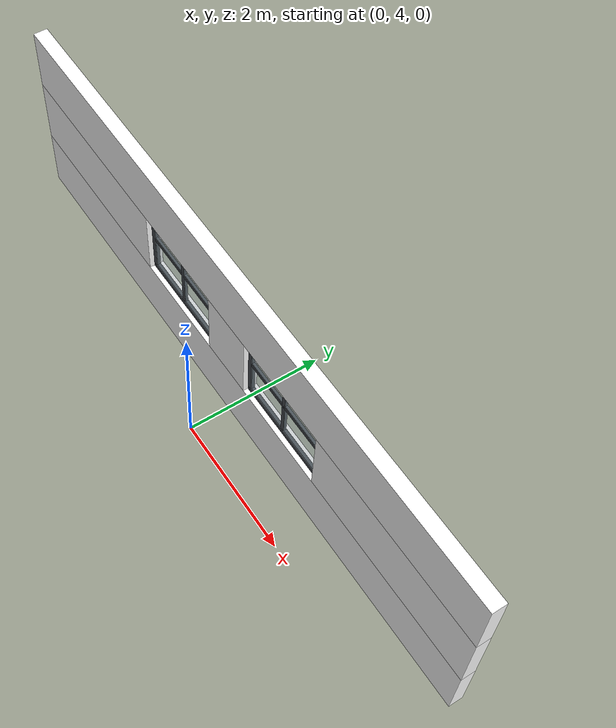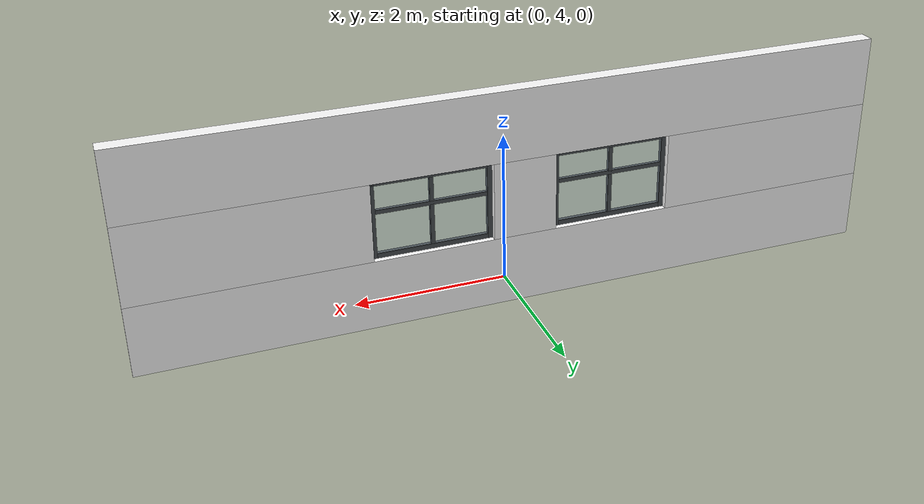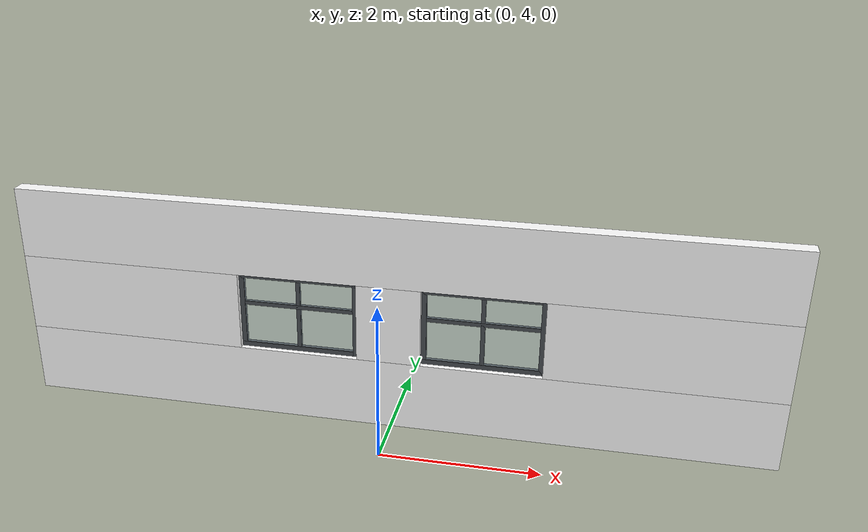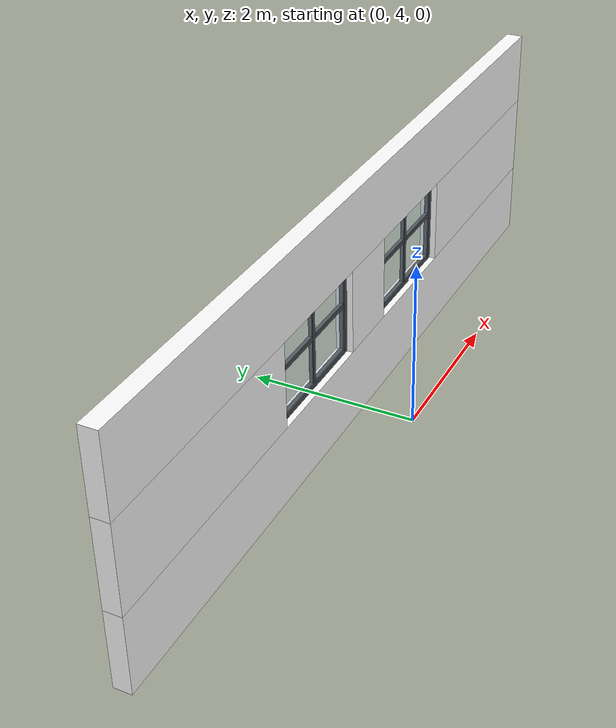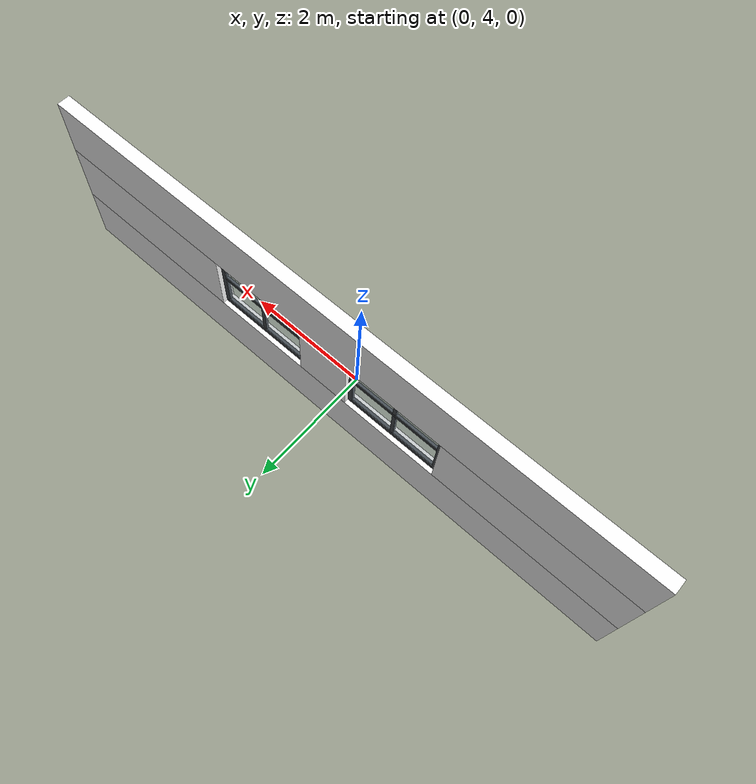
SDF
<sdf version="1.12">
 <world name="small_factory_room">
  <model name="north_wall">
   <static>true</static>
   <link name="north_wall_lower_link">
    <pose>0 4.6500000000000004 0.55000000000000004 0 0 0</pose>
    <collision name="north_wall_lower_collision">
     <geometry><box><size>9.5 0.20000000000000001 0.90000000000000002</size></box></geometry>
    </collision>
    <visual name="north_wall_lower_visual">
     <geometry>
      <mesh>
       <uri>file:///home/nearteh/Documents/Gazebo World/my_world/models/Walls/meshes/north_wall_lower.obj</uri>
      </mesh>
     </geometry>
     <material>
      <ambient>1 1 1 1</ambient>
      <diffuse>1 1 1 1</diffuse>
      <specular>0.150000006 0.150000006 0.150000006 1</specular>
      <pbr>
       <metal>
        <albedo_map>file:///home/nearteh/Documents/Gazebo World/my_world/models/Walls/textures/plastered_wall_02_1k/textures/plastered_wall_02_diff_1k.jpg</albedo_map>
        <roughness_map>file:///home/nearteh/Documents/Gazebo World/my_world/models/Walls/textures/plastered_wall_02_1k/textures/plastered_wall_02_rough_1k.exr</roughness_map>
        <metalness>0.0</metalness>
        <ambient_occlusion_map>file:///home/nearteh/Documents/Gazebo World/my_world/models/Walls/textures/plastered_wall_02_1k/textures/plastered_wall_02_ao_1k.jpg</ambient_occlusion_map>
        <normal_map type="tangent">file:///home/nearteh/Documents/Gazebo World/my_world/models/Walls/textures/plastered_wall_02_1k/textures/plastered_wall_02_nor_gl_1k.exr</normal_map>
       </metal>
      </pbr>
     </material>
    </visual>
    <inertial>
     <mass>1</mass>
     <inertia><ixx>1</ixx><ixy>0</ixy><ixz>0</ixz><iyy>1</iyy><iyz>0</iyz><izz>1</izz></inertia>
    </inertial>
   </link>
   <link name="north_wall_upper_link">
    <pose>0 4.6500000000000004 2.4500000000000002 0 0 0</pose>
    <collision name="north_wall_upper_collision">
     <geometry><box><size>9.5 0.20000000000000001 0.90000000000000002</size></box></geometry>
    </collision>
    <visual name="north_wall_upper_visual">
     <geometry>
      <mesh>
       <uri>file:///home/nearteh/Documents/Gazebo World/my_world/models/Walls/meshes/north_wall_upper.obj</uri>
      </mesh>
     </geometry>
     <material>
      <ambient>1 1 1 1</ambient>
      <diffuse>1 1 1 1</diffuse>
      <specular>0.150000006 0.150000006 0.150000006 1</specular>
      <pbr>
       <metal>
        <albedo_map>file:///home/nearteh/Documents/Gazebo World/my_world/models/Walls/textures/plastered_wall_02_1k/textures/plastered_wall_02_diff_1k.jpg</albedo_map>
        <roughness_map>file:///home/nearteh/Documents/Gazebo World/my_world/models/Walls/textures/plastered_wall_02_1k/textures/plastered_wall_02_rough_1k.exr</roughness_map>
        <metalness>0.0</metalness>
        <ambient_occlusion_map>file:///home/nearteh/Documents/Gazebo World/my_world/models/Walls/textures/plastered_wall_02_1k/textures/plastered_wall_02_ao_1k.jpg</ambient_occlusion_map>
        <normal_map type="tangent">file:///home/nearteh/Documents/Gazebo World/my_world/models/Walls/textures/plastered_wall_02_1k/textures/plastered_wall_02_nor_gl_1k.exr</normal_map>
       </metal>
      </pbr>
     </material>
    </visual>
    <inertial>
     <mass>1</mass>
     <inertia><ixx>1</ixx><ixy>0</ixy><ixz>0</ixz><iyy>1</iyy><iyz>0</iyz><izz>1</izz></inertia>
    </inertial>
   </link>
   <link name="north_wall_left_pier_link">
    <pose>-3.3250000000000002 4.6500000000000004 1.5 0 0 0</pose>
    <collision name="north_wall_left_pier_collision">
     <geometry><box><size>2.8500000000000001 0.20000000000000001 1</size></box></geometry>
    </collision>
    <visual name="north_wall_left_pier_visual">
     <geometry>
      <mesh>
       <uri>file:///home/nearteh/Documents/Gazebo World/my_world/models/Walls/meshes/north_wall_left_pier.obj</uri>
      </mesh>
     </geometry>
     <material>
      <ambient>1 1 1 1</ambient>
      <diffuse>1 1 1 1</diffuse>
      <specular>0.150000006 0.150000006 0.150000006 1</specular>
      <pbr>
       <metal>
        <albedo_map>file:///home/nearteh/Documents/Gazebo World/my_world/models/Walls/textures/plastered_wall_02_1k/textures/plastered_wall_02_diff_1k.jpg</albedo_map>
        <roughness_map>file:///home/nearteh/Documents/Gazebo World/my_world/models/Walls/textures/plastered_wall_02_1k/textures/plastered_wall_02_rough_1k.exr</roughness_map>
        <metalness>0.0</metalness>
        <ambient_occlusion_map>file:///home/nearteh/Documents/Gazebo World/my_world/models/Walls/textures/plastered_wall_02_1k/textures/plastered_wall_02_ao_1k.jpg</ambient_occlusion_map>
        <normal_map type="tangent">file:///home/nearteh/Documents/Gazebo World/my_world/models/Walls/textures/plastered_wall_02_1k/textures/plastered_wall_02_nor_gl_1k.exr</normal_map>
       </metal>
      </pbr>
     </material>
    </visual>
    <inertial>
     <mass>1</mass>
     <inertia><ixx>1</ixx><ixy>0</ixy><ixz>0</ixz><iyy>1</iyy><iyz>0</iyz><izz>1</izz></inertia>
    </inertial>
   </link>
   <link name="north_wall_center_pier_link">
    <pose>0 4.6500000000000004 1.5 0 0 0</pose>
    <collision name="north_wall_center_pier_collision">
     <geometry><box><size>0.80000000000000004 0.20000000000000001 1</size></box></geometry>
    </collision>
    <visual name="north_wall_center_pier_visual">
     <geometry>
      <mesh>
       <uri>file:///home/nearteh/Documents/Gazebo World/my_world/models/Walls/meshes/north_wall_center_pier.obj</uri>
      </mesh>
     </geometry>
     <material>
      <ambient>1 1 1 1</ambient>
      <diffuse>1 1 1 1</diffuse>
      <specular>0.150000006 0.150000006 0.150000006 1</specular>
      <pbr>
       <metal>
        <albedo_map>file:///home/nearteh/Documents/Gazebo World/my_world/models/Walls/textures/plastered_wall_02_1k/textures/plastered_wall_02_diff_1k.jpg</albedo_map>
        <roughness_map>file:///home/nearteh/Documents/Gazebo World/my_world/models/Walls/textures/plastered_wall_02_1k/textures/plastered_wall_02_rough_1k.exr</roughness_map>
        <metalness>0.0</metalness>
        <ambient_occlusion_map>file:///home/nearteh/Documents/Gazebo World/my_world/models/Walls/textures/plastered_wall_02_1k/textures/plastered_wall_02_ao_1k.jpg</ambient_occlusion_map>
        <normal_map type="tangent">file:///home/nearteh/Documents/Gazebo World/my_world/models/Walls/textures/plastered_wall_02_1k/textures/plastered_wall_02_nor_gl_1k.exr</normal_map>
       </metal>
      </pbr>
     </material>
    </visual>
    <inertial>
     <mass>1</mass>
     <inertia><ixx>1</ixx><ixy>0</ixy><ixz>0</ixz><iyy>1</iyy><iyz>0</iyz><izz>1</izz></inertia>
    </inertial>
   </link>
   <link name="north_wall_right_pier_link">
    <pose>3.3250000000000002 4.6500000000000004 1.5 0 0 0</pose>
    <collision name="north_wall_right_pier_collision">
     <geometry><box><size>2.8500000000000001 0.20000000000000001 1</size></box></geometry>
    </collision>
    <visual name="north_wall_right_pier_visual">
     <geometry>
      <mesh>
       <uri>file:///home/nearteh/Documents/Gazebo World/my_world/models/Walls/meshes/north_wall_right_pier.obj</uri>
      </mesh>
     </geometry>
     <material>
      <ambient>1 1 1 1</ambient>
      <diffuse>1 1 1 1</diffuse>
      <specular>0.150000006 0.150000006 0.150000006 1</specular>
      <pbr>
       <metal>
        <albedo_map>file:///home/nearteh/Documents/Gazebo World/my_world/models/Walls/textures/plastered_wall_02_1k/textures/plastered_wall_02_diff_1k.jpg</albedo_map>
        <roughness_map>file:///home/nearteh/Documents/Gazebo World/my_world/models/Walls/textures/plastered_wall_02_1k/textures/plastered_wall_02_rough_1k.exr</roughness_map>
        <metalness>0.0</metalness>
        <ambient_occlusion_map>file:///home/nearteh/Documents/Gazebo World/my_world/models/Walls/textures/plastered_wall_02_1k/textures/plastered_wall_02_ao_1k.jpg</ambient_occlusion_map>
        <normal_map type="tangent">file:///home/nearteh/Documents/Gazebo World/my_world/models/Walls/textures/plastered_wall_02_1k/textures/plastered_wall_02_nor_gl_1k.exr</normal_map>
       </metal>
      </pbr>
     </material>
    </visual>
    <inertial>
     <mass>1</mass>
     <inertia><ixx>1</ixx><ixy>0</ixy><ixz>0</ixz><iyy>1</iyy><iyz>0</iyz><izz>1</izz></inertia>
    </inertial>
   </link>
   <link name="north_window_left_link">
    <pose>-1.1499999999999999 4.6500000000000004 1.5 0 0 0</pose>
    <collision name="north_window_left_glass_collision">
     <geometry><box><size>1.4199999999999999 0.029999999999999999 0.92000000000000004</size></box></geometry>
    </collision>
    <visual name="north_window_left_glass_visual">
     <geometry><box><size>1.4199999999999999 0.029999999999999999 0.92000000000000004</size></box></geometry>
     <material>
      <ambient>0.620000005 0.75 0.819999993 0.300000012</ambient>
      <diffuse>0.74000001 0.860000014 0.920000017 0.300000012</diffuse>
      <specular>0.219999999 0.219999999 0.219999999 1</specular>
     </material>
     <transparency>0.59999999999999998</transparency>
    </visual>
    <visual name="north_window_left_frame_top_visual">
     <pose>0 0 0.46999999999999997 0 0 0</pose>
     <geometry><box><size>1.5 0.059999999999999998 0.059999999999999998</size></box></geometry>
     <material>
      <ambient>0.180000007 0.200000003 0.219999999 1</ambient>
      <diffuse>0.280000001 0.300000012 0.319999993 1</diffuse>
      <specular>0.0799999982 0.0799999982 0.0799999982 1</specular>
     </material>
    </visual>
    <visual name="north_window_left_frame_bottom_visual">
     <pose>0 0 -0.46999999999999997 0 0 0</pose>
     <geometry><box><size>1.5 0.059999999999999998 0.059999999999999998</size></box></geometry>
     <material>
      <ambient>0.180000007 0.200000003 0.219999999 1</ambient>
      <diffuse>0.280000001 0.300000012 0.319999993 1</diffuse>
      <specular>0.0799999982 0.0799999982 0.0799999982 1</specular>
     </material>
    </visual>
    <visual name="north_window_left_frame_left_visual">
     <pose>-0.71999999999999997 0 0 0 0 0</pose>
     <geometry><box><size>0.059999999999999998 0.059999999999999998 1</size></box></geometry>
     <material>
      <ambient>0.180000007 0.200000003 0.219999999 1</ambient>
      <diffuse>0.280000001 0.300000012 0.319999993 1</diffuse>
      <specular>0.0799999982 0.0799999982 0.0799999982 1</specular>
     </material>
    </visual>
    <visual name="north_window_left_frame_right_visual">
     <pose>0.71999999999999997 0 0 0 0 0</pose>
     <geometry><box><size>0.059999999999999998 0.059999999999999998 1</size></box></geometry>
     <material>
      <ambient>0.180000007 0.200000003 0.219999999 1</ambient>
      <diffuse>0.280000001 0.300000012 0.319999993 1</diffuse>
      <specular>0.0799999982 0.0799999982 0.0799999982 1</specular>
     </material>
    </visual>
    <visual name="north_window_left_frame_center_visual">
     <geometry><box><size>0.050000000000000003 0.050000000000000003 0.92000000000000004</size></box></geometry>
     <material>
      <ambient>0.180000007 0.200000003 0.219999999 1</ambient>
      <diffuse>0.280000001 0.300000012 0.319999993 1</diffuse>
      <specular>0.0799999982 0.0799999982 0.0799999982 1</specular>
     </material>
    </visual>
    <visual name="north_window_left_frame_transom_visual">
     <pose>0 0 0.10000000000000001 0 0 0</pose>
     <geometry><box><size>1.4199999999999999 0.050000000000000003 0.050000000000000003</size></box></geometry>
     <material>
      <ambient>0.180000007 0.200000003 0.219999999 1</ambient>
      <diffuse>0.280000001 0.300000012 0.319999993 1</diffuse>
      <specular>0.0799999982 0.0799999982 0.0799999982 1</specular>
     </material>
    </visual>
    <inertial>
     <mass>1</mass>
     <inertia><ixx>1</ixx><ixy>0</ixy><ixz>0</ixz><iyy>1</iyy><iyz>0</iyz><izz>1</izz></inertia>
    </inertial>
   </link>
   <link name="north_window_right_link">
    <pose>1.1499999999999999 4.6500000000000004 1.5 0 0 0</pose>
    <collision name="north_window_right_glass_collision">
     <geometry><box><size>1.4199999999999999 0.029999999999999999 0.92000000000000004</size></box></geometry>
    </collision>
    <visual name="north_window_right_glass_visual">
     <geometry><box><size>1.4199999999999999 0.029999999999999999 0.92000000000000004</size></box></geometry>
     <material>
      <ambient>0.620000005 0.75 0.819999993 0.300000012</ambient>
      <diffuse>0.74000001 0.860000014 0.920000017 0.300000012</diffuse>
      <specular>0.219999999 0.219999999 0.219999999 1</specular>
     </material>
     <transparency>0.59999999999999998</transparency>
    </visual>
    <visual name="north_window_right_frame_top_visual">
     <pose>0 0 0.46999999999999997 0 0 0</pose>
     <geometry><box><size>1.5 0.059999999999999998 0.059999999999999998</size></box></geometry>
     <material>
      <ambient>0.180000007 0.200000003 0.219999999 1</ambient>
      <diffuse>0.280000001 0.300000012 0.319999993 1</diffuse>
      <specular>0.0799999982 0.0799999982 0.0799999982 1</specular>
     </material>
    </visual>
    <visual name="north_window_right_frame_bottom_visual">
     <pose>0 0 -0.46999999999999997 0 0 0</pose>
     <geometry><box><size>1.5 0.059999999999999998 0.059999999999999998</size></box></geometry>
     <material>
      <ambient>0.180000007 0.200000003 0.219999999 1</ambient>
      <diffuse>0.280000001 0.300000012 0.319999993 1</diffuse>
      <specular>0.0799999982 0.0799999982 0.0799999982 1</specular>
     </material>
    </visual>
    <visual name="north_window_right_frame_left_visual">
     <pose>-0.71999999999999997 0 0 0 0 0</pose>
     <geometry><box><size>0.059999999999999998 0.059999999999999998 1</size></box></geometry>
     <material>
      <ambient>0.180000007 0.200000003 0.219999999 1</ambient>
      <diffuse>0.280000001 0.300000012 0.319999993 1</diffuse>
      <specular>0.0799999982 0.0799999982 0.0799999982 1</specular>
     </material>
    </visual>
    <visual name="north_window_right_frame_right_visual">
     <pose>0.71999999999999997 0 0 0 0 0</pose>
     <geometry><box><size>0.059999999999999998 0.059999999999999998 1</size></box></geometry>
     <material>
      <ambient>0.180000007 0.200000003 0.219999999 1</ambient>
      <diffuse>0.280000001 0.300000012 0.319999993 1</diffuse>
      <specular>0.0799999982 0.0799999982 0.0799999982 1</specular>
     </material>
    </visual>
    <visual name="north_window_right_frame_center_visual">
     <geometry><box><size>0.050000000000000003 0.050000000000000003 0.92000000000000004</size></box></geometry>
     <material>
      <ambient>0.180000007 0.200000003 0.219999999 1</ambient>
      <diffuse>0.280000001 0.300000012 0.319999993 1</diffuse>
      <specular>0.0799999982 0.0799999982 0.0799999982 1</specular>
     </material>
    </visual>
    <visual name="north_window_right_frame_transom_visual">
     <pose>0 0 0.10000000000000001 0 0 0</pose>
     <geometry><box><size>1.4199999999999999 0.050000000000000003 0.050000000000000003</size></box></geometry>
     <material>
      <ambient>0.180000007 0.200000003 0.219999999 1</ambient>
      <diffuse>0.280000001 0.300000012 0.319999993 1</diffuse>
      <specular>0.0799999982 0.0799999982 0.0799999982 1</specular>
     </material>
    </visual>
    <inertial>
     <mass>1</mass>
     <inertia><ixx>1</ixx><ixy>0</ixy><ixz>0</ixz><iyy>1</iyy><iyz>0</iyz><izz>1</izz></inertia>
    </inertial>
   </link>
  </model>
 </world>
</sdf>
